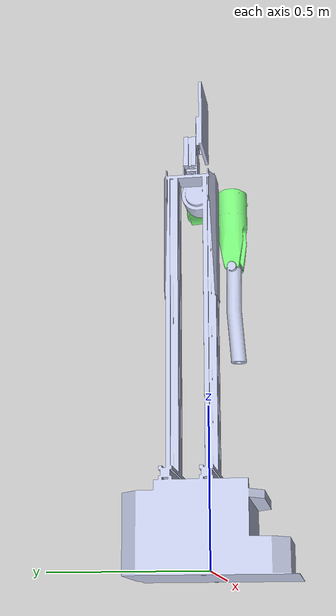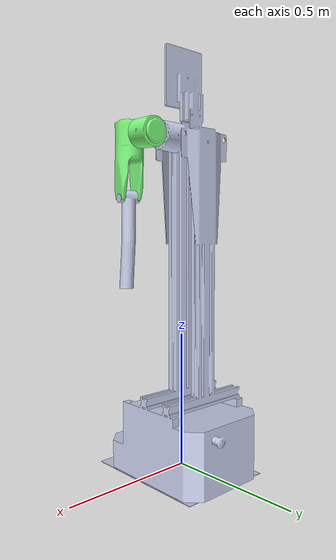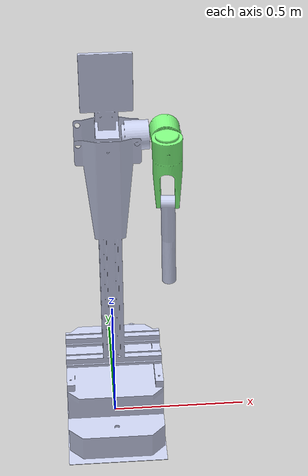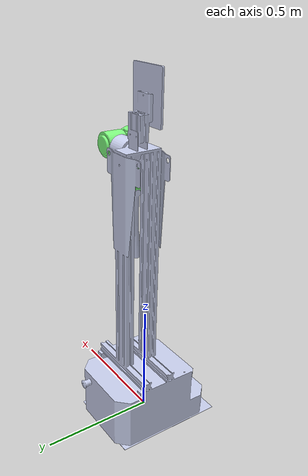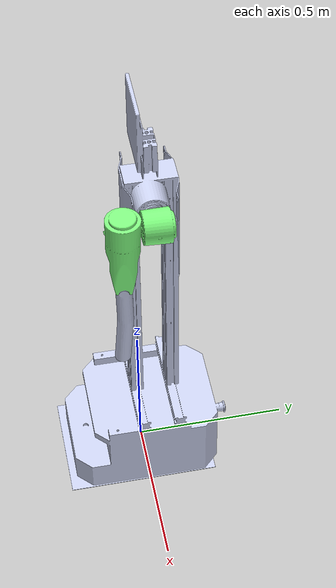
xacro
<?xml version="1.0" encoding="utf-8" ?>
<robot xmlns:xacro="http://www.ros.org/wiki/xacro">
<link name="world" />
    <link name="base_link">

<inertial>
            <origin xyz="0.00185312215918698 0.0399913545923669 0.239493994552394" rpy="0 0 0" />
            <mass value="26.9408384150318" />
            <inertia ixx="0.786117810110698" ixy="-0.00103935700044474" ixz="-0.000371491770706058" iyy="0.577109053712677" iyz="-0.0774113755567862" izz="0.669530810421685" />
        </inertial>

        <visual>
            <origin xyz="0 0 0" rpy="0 0 0" />
            <geometry>
                <mesh filename="package://artbot/meshes/base_link.STL" />
            </geometry>
            <material name="">
                <color rgba="0.792156862745098 0.819607843137255 0.933333333333333 1" />
            </material>
        </visual>
        <collision>
            <origin xyz="0 0 0" rpy="0 0 0" />
            <geometry>
                <mesh filename="package://artbot/meshes/base_link.STL" />
            </geometry>
        </collision>
    </link>
        <joint name="virtual_joint" type="fixed">
    <parent link="world"/>
    <child link="base_link"/>
  </joint>
    <link name="Link1">

<inertial>
            <origin xyz="-0.0119499744904408 0.0588403286244772 1.28752148942368E-08" rpy="0 0 0" />
            <mass value="0.290050923059125" />
            <inertia ixx="0.000472723454898701" ixy="-1.70830969016571E-11" ixz="2.71078713429734E-11" iyy="0.000280800928472812" iyz="6.84166308081625E-08" izz="0.000288726126215457" />
        </inertial>

        <visual>
            <origin xyz="0 0 0" rpy="0 0 0" />
            <geometry>
                <mesh filename="package://artbot/meshes/Link1.STL" />
            </geometry>
            <material name="">
                <color rgba="0.501960784313725 1 0.501960784313725 1" />
            </material>
        </visual>
        <collision>
            <origin xyz="0 0 0" rpy="0 0 0" />
            <geometry>
                <mesh filename="package://artbot/meshes/Link1.STL" />
            </geometry>
        </collision>
    </link>
    <joint name="ExtampFlex" type="revolute">
        <origin xyz="0.1391 0.036717 1.2212" rpy="0.031302 -0.022783 -1.5768" />
        <parent link="base_link" />
        <child link="Link1" />
        <axis xyz="0 1 0" />
        <limit lower="-2.6" upper="2.6" effort="10.0" velocity="10.0" />
        <dynamics damping="0.7"/>
    </joint>
    <link name="Link2">

<inertial>
            <origin xyz="0.0716311847311801 -0.061317238207508 -7.84508624729341E-08" rpy="0 0 0" />
            <mass value="0.797885605068758" />
            <inertia ixx="0.00131043740788724" ixy="4.27327214932654E-10" ixz="-1.72009525676167E-10" iyy="0.00197616819943127" iyz="3.28649492760946E-05" izz="0.00168856072846654" />
        </inertial>

        <visual>
            <origin xyz="0 0 0" rpy="0 0 0" />
            <geometry>
                <mesh filename="package://artbot/meshes/Link2.STL" />
            </geometry>
            <material name="">
                <color rgba="0.501960784313725 1 0.501960784313725 1" />
            </material>
        </visual>
        <collision>
            <origin xyz="0 0 0" rpy="0 0 0" />
            <geometry>
                <mesh filename="package://artbot/meshes/Link2.STL" />
            </geometry>
        </collision>
    </link>
    <joint name="AddampAbd" type="revolute">
        <origin xyz="0.036883 0.05884 0" rpy="-3.1416 1.5506 -1.5708" />
        <parent link="Link1" />
        <child link="Link2" />
        <axis xyz="0 1 0" />
        <limit lower="-2.6" upper="2.6" effort="10.0" velocity="10.0" />
        <dynamics damping="0.7"/>
    </joint>
    <link name="Link3">

<inertial>
            <origin xyz="-0.00339642249986927 -0.138123712921605 0.00668388044107915" rpy="0 0 0" />
            <mass value="0.702719761800887" />
            <inertia ixx="0.0073957453943334" ixy="-0.000294163517279355" ixz="-1.44089041468742E-09" iyy="0.000256811014040379" iyz="-1.11302814954285E-08" izz="0.00738650565858986" />
        </inertial>

        <visual>
            <origin xyz="0 0 0" rpy="0 0 0" />
            <geometry>
                <mesh filename="package://artbot/meshes/Link3.STL" />
            </geometry>
            <material name="">
                <color rgba="0.792156862745098 0.819607843137255 0.933333333333333 1" />
            </material>
        </visual>
        <collision>
            <origin xyz="0 0 0" rpy="0 0 0" />
            <geometry>
                <mesh filename="package://artbot/meshes/Link3.STL" />
            </geometry>
        </collision>
    </link>
    <joint name="Elbow" type="revolute">
        <origin xyz="0.2232 -0.060589 -0.0066439" rpy="-0.0038812 -0.10915 1.6064" />
        <parent link="Link2" />
        <child link="Link3" />
        <axis xyz="0 0 1" />
        <limit lower="-2.6" upper="2.6" effort="10.0" velocity="10.0" />
        <dynamics damping="0.7"/>
    </joint>

<transmission name="trans_ExtampFlex">
        <type>transmission_interface/SimpleTransmission</type>
        <joint name="ExtampFlex">
            <hardwareInterface>hardware_interface/EffortJointInterface</hardwareInterface>
        </joint>
        <actuator name="ExtampFlex_motor">
            <hardwareInterface>hardware_interface/EffortJointInterface</hardwareInterface>
            <mechanicalReduction>1</mechanicalReduction>
        </actuator>
    </transmission>
    <transmission name="trans_AddampAbd">
        <type>transmission_interface/SimpleTransmission</type>
        <joint name="AddampAbd">
            <hardwareInterface>hardware_interface/EffortJointInterface</hardwareInterface>
        </joint>
        <actuator name="AddampAbd_motor">
            <hardwareInterface>hardware_interface/EffortJointInterface</hardwareInterface>
            <mechanicalReduction>1</mechanicalReduction>
        </actuator>
    </transmission>
    <transmission name="trans_Elbow">
        <type>transmission_interface/SimpleTransmission</type>
        <joint name="Elbow">
            <hardwareInterface>hardware_interface/EffortJointInterface</hardwareInterface>
        </joint>
        <actuator name="Elbow_motor">
            <hardwareInterface>hardware_interface/EffortJointInterface</hardwareInterface>
            <mechanicalReduction>1</mechanicalReduction>
        </actuator>
    </transmission>
    <gazebo>
        <plugin name="gazebo_ros_control" filename="libgazebo_ros_control.so">
            <robotNamespace>/</robotNamespace>
        </plugin>
    </gazebo>
</robot>
